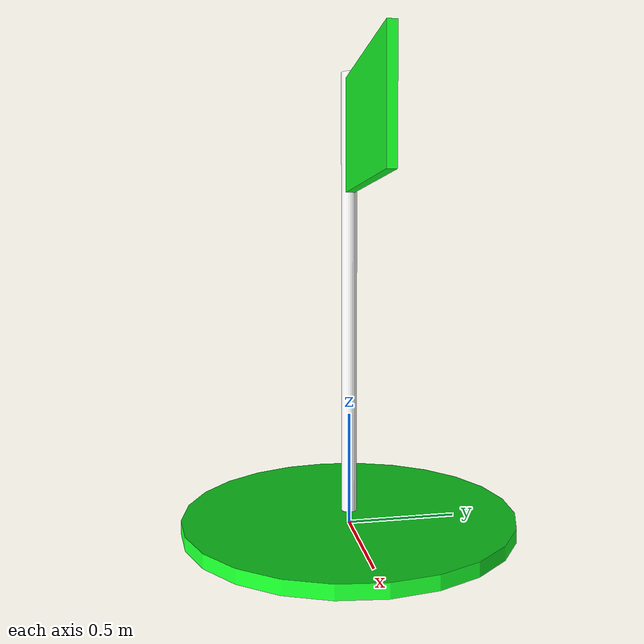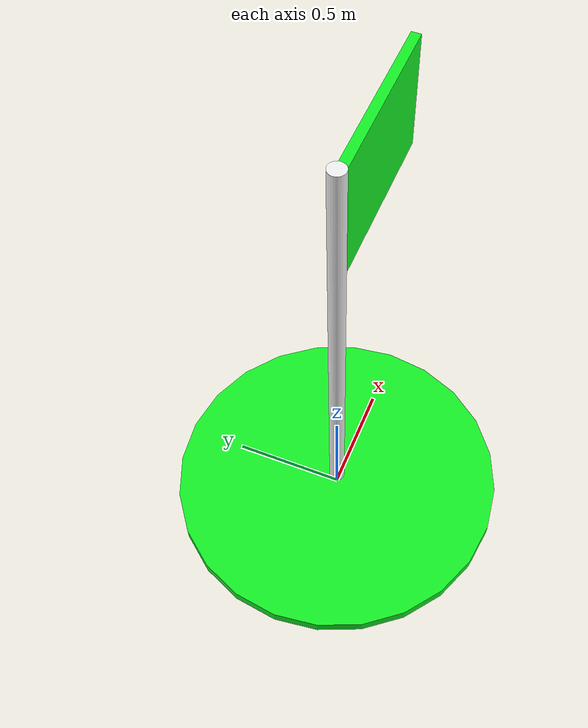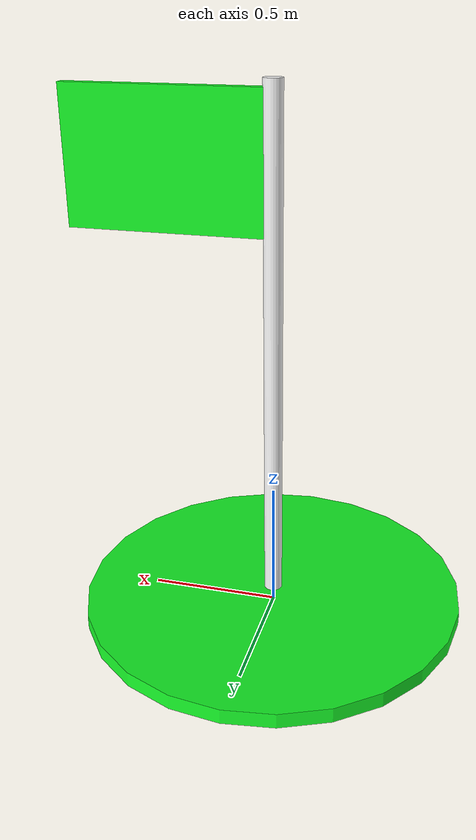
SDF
<?xml version="1.0"?>
<sdf version="1.7">
  <model name="goal_marker">
    <!-- Static keeps the goal at the placed pose; Gazebo's transform tool can
         still reposition it. No collision is used, so robots can reach it. -->
    <static>true</static>
    <link name="goal_link">
      <visual name="target_disc">
        <pose>0 0 0.03 0 0 0</pose>
        <geometry>
          <cylinder>
            <radius>0.75</radius>
            <length>0.06</length>
          </cylinder>
        </geometry>
        <material>
          <ambient>0.05 0.65 0.10 1</ambient>
          <diffuse>0.08 0.95 0.15 1</diffuse>
          <specular>0.10 0.10 0.10 1</specular>
          <emissive>0.02 0.18 0.03 1</emissive>
        </material>
      </visual>

      <visual name="goal_pole">
        <pose>0 0 1.03 0 0 0</pose>
        <geometry>
          <cylinder>
            <radius>0.035</radius>
            <length>2.0</length>
          </cylinder>
        </geometry>
        <material>
          <ambient>0.80 0.80 0.80 1</ambient>
          <diffuse>0.95 0.95 0.95 1</diffuse>
        </material>
      </visual>

      <visual name="goal_flag">
        <pose>0.38 0 1.75 0 0 0</pose>
        <geometry>
          <box>
            <size>0.75 0.04 0.50</size>
          </box>
        </geometry>
        <material>
          <ambient>0.05 0.65 0.10 1</ambient>
          <diffuse>0.08 0.95 0.15 1</diffuse>
          <emissive>0.02 0.18 0.03 1</emissive>
        </material>
      </visual>
    </link>
  </model>
</sdf>
